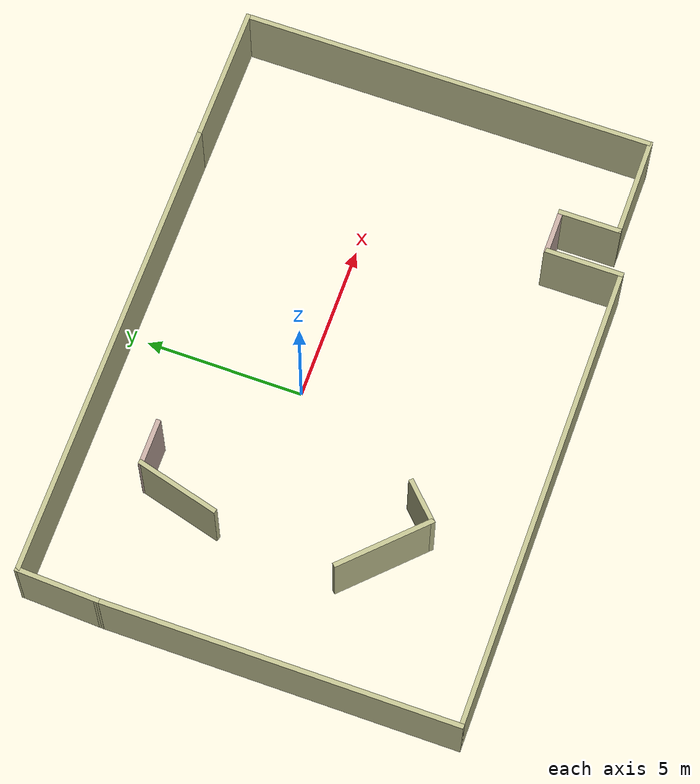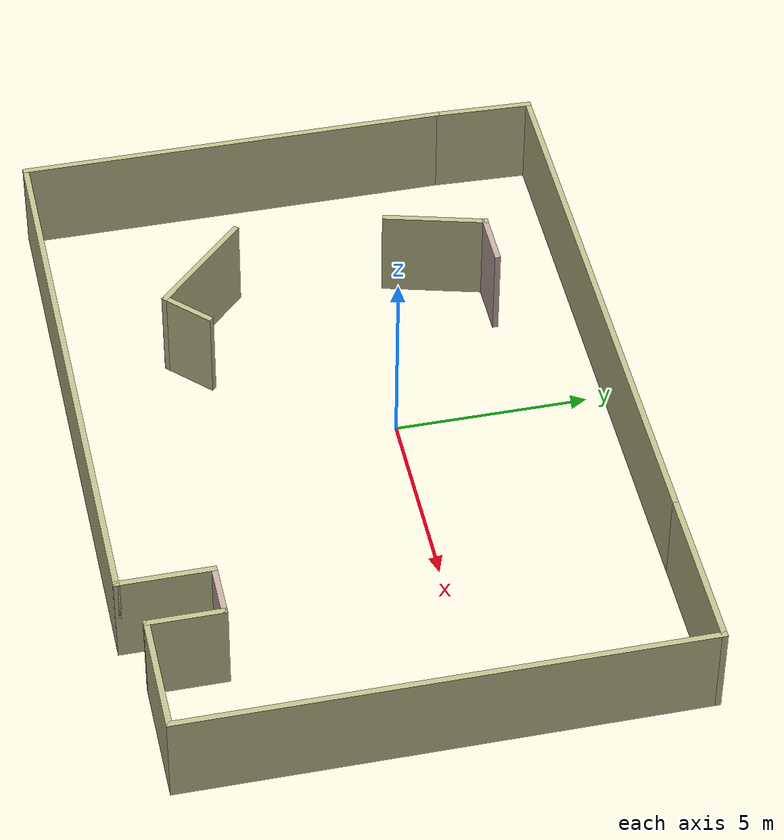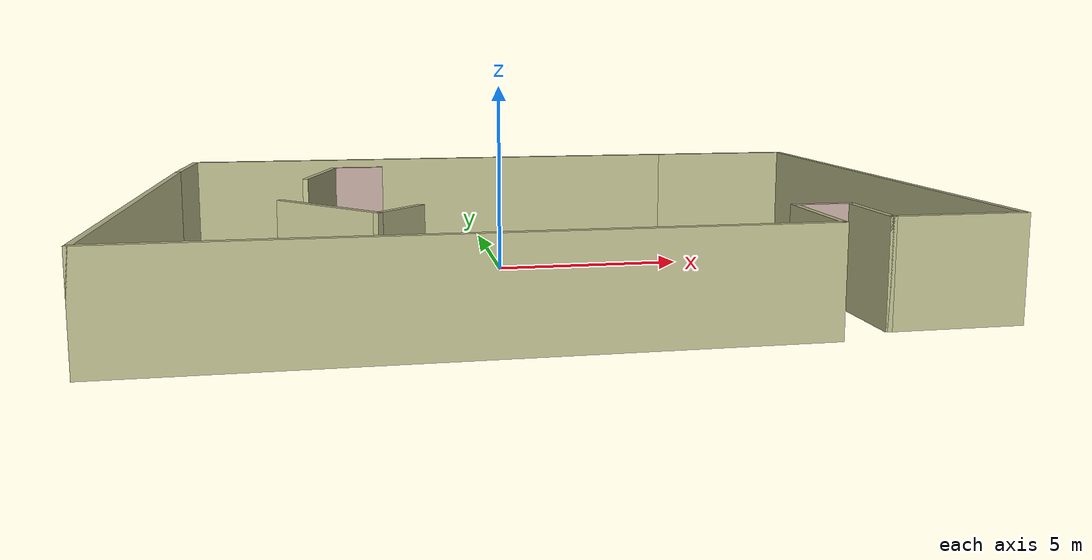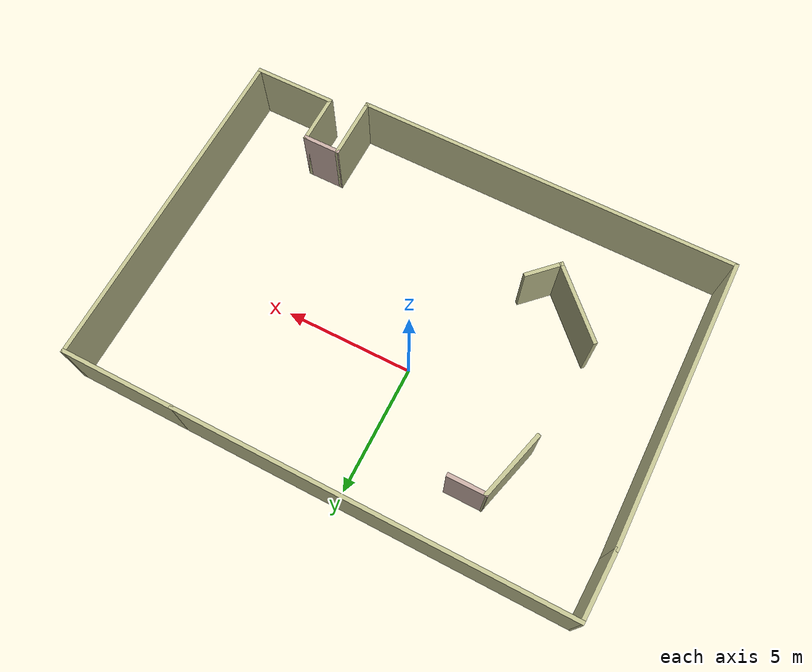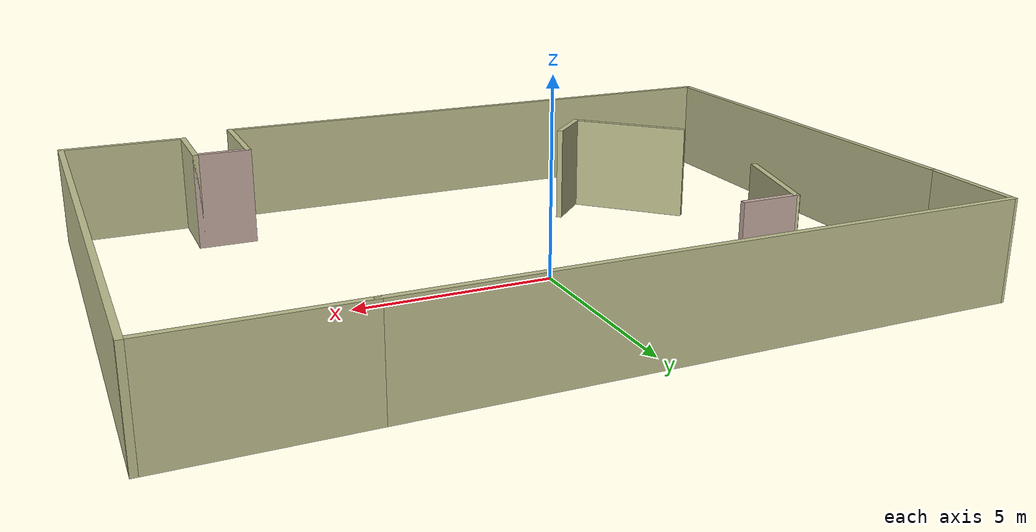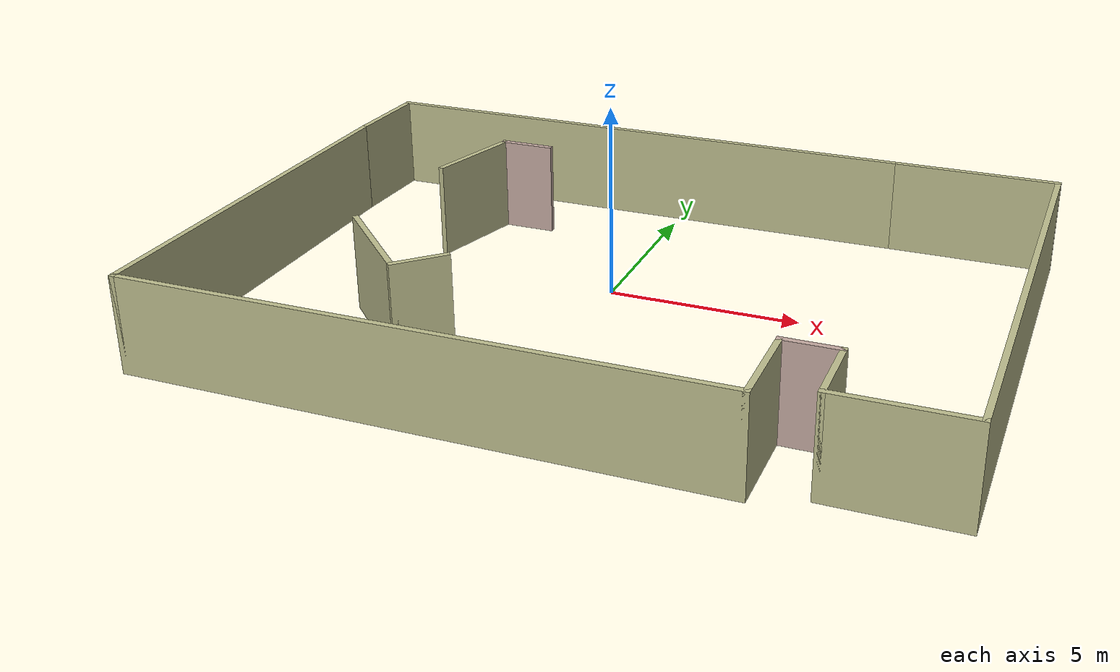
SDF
<?xml version='1.0'?>
<sdf version='1.7'>
  <model name='walls'>
    <pose>0.762888 -1.28525 0 0 -0 0</pose>
    <link name='Wall_10'>
      <collision name='Wall_10_Collision'>
        <geometry>
          <box>
            <size>15 0.15 2.5</size>
          </box>
        </geometry>
        <pose>0 0 1.25 0 -0 0</pose>
      </collision>
      <visual name='Wall_10_Visual'>
        <pose>0 0 1.25 0 -0 0</pose>
        <geometry>
          <box>
            <size>15 0.15 2.5</size>
          </box>
        </geometry>
        <material>
          <script>
            <uri>file://media/materials/scripts/gazebo.material</uri>
            <name>Gazebo/Grey</name>
          </script>
          <ambient>0.741176 0.741176 0.556863 1</ambient>
        </material>
        <meta>
          <layer>0</layer>
        </meta>
      </visual>
      <pose>-2.12353 6.79853 0 0 -0 3.14159</pose>
    </link>
    <link name='Wall_11'>
      <collision name='Wall_11_Collision'>
        <geometry>
          <box>
            <size>2.652 0.15 2.5</size>
          </box>
        </geometry>
        <pose>0 0 1.25 0 -0 0</pose>
      </collision>
      <visual name='Wall_11_Visual'>
        <pose>0 0 1.25 0 -0 0</pose>
        <geometry>
          <box>
            <size>2.652 0.15 2.5</size>
          </box>
        </geometry>
        <material>
          <script>
            <uri>file://media/materials/scripts/gazebo.material</uri>
            <name>Gazebo/Grey</name>
          </script>
          <ambient>0.741176 0.741176 0.556863 1</ambient>
        </material>
        <meta>
          <layer>0</layer>
        </meta>
      </visual>
      <pose>-9.59853 5.54853 0 0 -0 -1.61078</pose>
    </link>
    <link name='Wall_13'>
      <collision name='Wall_13_Collision'>
        <geometry>
          <box>
            <size>3.25 0.15 2.5</size>
          </box>
        </geometry>
        <pose>0 0 1.25 0 -0 0</pose>
      </collision>
      <visual name='Wall_13_Visual'>
        <pose>0 0 1.25 0 -0 0</pose>
        <geometry>
          <box>
            <size>3.25 0.15 2.5</size>
          </box>
        </geometry>
        <material>
          <script>
            <uri>file://media/materials/scripts/gazebo.material</uri>
            <name>Gazebo/Grey</name>
          </script>
          <ambient>0.741176 0.741176 0.556863 1</ambient>
        </material>
        <meta>
          <layer>0</layer>
        </meta>
      </visual>
      <pose>-5.21657 -2.91531 0 0 -0 -0.785398</pose>
    </link>
    <link name='Wall_14'>
      <collision name='Wall_14_Collision'>
        <geometry>
          <box>
            <size>1.5 0.15 2.5</size>
          </box>
        </geometry>
        <pose>0 0 1.25 0 -0 0</pose>
      </collision>
      <visual name='Wall_14_Visual'>
        <pose>0 0 1.25 0 -0 0</pose>
        <geometry>
          <box>
            <size>1.5 0.15 2.5</size>
          </box>
        </geometry>
        <material>
          <script>
            <uri>file://media/materials/scripts/gazebo.material</uri>
            <name>Gazebo/Grey</name>
          </script>
          <ambient>0.741176 0.741176 0.556863 1</ambient>
        </material>
        <meta>
          <layer>0</layer>
        </meta>
      </visual>
      <pose>-3.64326 -3.53403 0 0 -0 0.785398</pose>
    </link>
    <link name='Wall_16'>
      <collision name='Wall_16_Collision'>
        <geometry>
          <box>
            <size>2.75 0.15 2.5</size>
          </box>
        </geometry>
        <pose>0 0 1.25 0 -0 0</pose>
      </collision>
      <visual name='Wall_16_Visual'>
        <pose>0 0 1.25 0 -0 0</pose>
        <geometry>
          <box>
            <size>2.75 0.15 2.5</size>
          </box>
        </geometry>
        <material>
          <script>
            <uri>file://media/materials/scripts/gazebo.material</uri>
            <name>Gazebo/Grey</name>
          </script>
          <ambient>0.741176 0.741176 0.556863 1</ambient>
        </material>
        <meta>
          <layer>0</layer>
        </meta>
      </visual>
      <pose>-5.60904 3.35196 0 0 -0 1.309</pose>
    </link>
    <link name='Wall_17'>
      <collision name='Wall_17_Collision'>
        <geometry>
          <box>
            <size>1.5 0.15 2.5</size>
          </box>
        </geometry>
        <pose>0 0 1.25 0 -0 0</pose>
      </collision>
      <visual name='Wall_17_Visual'>
        <pose>0 0 1.25 0 -0 0</pose>
        <geometry>
          <box>
            <size>1.5 0.15 2.5</size>
          </box>
        </geometry>
        <material>
          <script>
            <uri>file://media/materials/scripts/gazebo.material</uri>
            <name>Gazebo/Grey</name>
          </script>
          <ambient>0.760784 0.662745 0.627451 1</ambient>
        </material>
        <meta>
          <layer>0</layer>
        </meta>
      </visual>
      <pose>-4.59758 4.60766 0 0 -0 0</pose>
    </link>
    <link name='Wall_2'>
      <collision name='Wall_2_Collision'>
        <geometry>
          <box>
            <size>11.25 0.15 2.5</size>
          </box>
        </geometry>
        <pose>0 0 1.25 0 -0 0</pose>
      </collision>
      <visual name='Wall_2_Visual'>
        <pose>0 0 1.25 0 -0 0</pose>
        <geometry>
          <box>
            <size>11.25 0.15 2.5</size>
          </box>
        </geometry>
        <material>
          <script>
            <uri>file://media/materials/scripts/gazebo.material</uri>
            <name>Gazebo/Grey</name>
          </script>
          <ambient>0.741176 0.741176 0.556863 1</ambient>
        </material>
        <meta>
          <layer>0</layer>
        </meta>
      </visual>
      <pose>-9.64853 -1.25147 0 0 -0 -1.5708</pose>
    </link>
    <link name='Wall_3'>
      <collision name='Wall_3_Collision'>
        <geometry>
          <box>
            <size>15 0.15 2.5</size>
          </box>
        </geometry>
        <pose>0 0 1.25 0 -0 0</pose>
      </collision>
      <visual name='Wall_3_Visual'>
        <pose>0 0 1.25 0 -0 0</pose>
        <geometry>
          <box>
            <size>15 0.15 2.5</size>
          </box>
        </geometry>
        <material>
          <script>
            <uri>file://media/materials/scripts/gazebo.material</uri>
            <name>Gazebo/Grey</name>
          </script>
          <ambient>0.741176 0.741176 0.556863 1</ambient>
        </material>
        <meta>
          <layer>0</layer>
        </meta>
      </visual>
      <pose>-2.22353 -6.80147 0 0 -0 0</pose>
    </link>
    <link name='Wall_4'>
      <collision name='Wall_4_Collision'>
        <geometry>
          <box>
            <size>2.5 0.15 2.5</size>
          </box>
        </geometry>
        <pose>0 0 1.25 0 -0 0</pose>
      </collision>
      <visual name='Wall_4_Visual'>
        <pose>0 0 1.25 0 -0 0</pose>
        <geometry>
          <box>
            <size>2.5 0.15 2.5</size>
          </box>
        </geometry>
        <material>
          <script>
            <uri>file://media/materials/scripts/gazebo.material</uri>
            <name>Gazebo/Grey</name>
          </script>
          <ambient>0.741176 0.741176 0.556863 1</ambient>
        </material>
        <meta>
          <layer>0</layer>
        </meta>
      </visual>
      <pose>5.20147 -5.62647 0 0 -0 1.5708</pose>
    </link>
    <link name='Wall_5'>
      <collision name='Wall_5_Collision'>
        <geometry>
          <box>
            <size>1.5 0.15 2.5</size>
          </box>
        </geometry>
        <pose>0 0 1.25 0 -0 0</pose>
      </collision>
      <visual name='Wall_5_Visual'>
        <pose>0 0 1.25 0 -0 0</pose>
        <geometry>
          <box>
            <size>1.5 0.15 2.5</size>
          </box>
        </geometry>
        <material>
          <script>
            <uri>file://media/materials/scripts/gazebo.material</uri>
            <name>Gazebo/Grey</name>
          </script>
          <ambient>0.760784 0.662745 0.627451 1</ambient>
        </material>
        <meta>
          <layer>0</layer>
        </meta>
      </visual>
      <pose>5.87647 -4.45147 0 0 -0 0</pose>
    </link>
    <link name='Wall_6'>
      <collision name='Wall_6_Collision'>
        <geometry>
          <box>
            <size>2 0.15 2.5</size>
          </box>
        </geometry>
        <pose>0 0 1.25 0 -0 0</pose>
      </collision>
      <visual name='Wall_6_Visual'>
        <pose>0 0 1.25 0 -0 0</pose>
        <geometry>
          <box>
            <size>2 0.15 2.5</size>
          </box>
        </geometry>
        <material>
          <script>
            <uri>file://media/materials/scripts/gazebo.material</uri>
            <name>Gazebo/Grey</name>
          </script>
          <ambient>0.741176 0.741176 0.556863 1</ambient>
        </material>
        <meta>
          <layer>0</layer>
        </meta>
      </visual>
      <pose>6.55147 -5.37647 0 0 -0 -1.5708</pose>
    </link>
    <link name='Wall_7'>
      <collision name='Wall_7_Collision'>
        <geometry>
          <box>
            <size>3.25 0.15 2.5</size>
          </box>
        </geometry>
        <pose>0 0 1.25 0 -0 0</pose>
      </collision>
      <visual name='Wall_7_Visual'>
        <pose>0 0 1.25 0 -0 0</pose>
        <geometry>
          <box>
            <size>3.25 0.15 2.5</size>
          </box>
        </geometry>
        <material>
          <script>
            <uri>file://media/materials/scripts/gazebo.material</uri>
            <name>Gazebo/Grey</name>
          </script>
          <ambient>0.741176 0.741176 0.556863 1</ambient>
        </material>
        <meta>
          <layer>0</layer>
        </meta>
      </visual>
      <pose>8.10147 -6.30147 0 0 -0 0</pose>
    </link>
    <link name='Wall_8'>
      <collision name='Wall_8_Collision'>
        <geometry>
          <box>
            <size>13.25 0.15 2.5</size>
          </box>
        </geometry>
        <pose>0 0 1.25 0 -0 0</pose>
      </collision>
      <visual name='Wall_8_Visual'>
        <pose>0 0 1.25 0 -0 0</pose>
        <geometry>
          <box>
            <size>13.25 0.15 2.5</size>
          </box>
        </geometry>
        <material>
          <script>
            <uri>file://media/materials/scripts/gazebo.material</uri>
            <name>Gazebo/Grey</name>
          </script>
          <ambient>0.741176 0.741176 0.556863 1</ambient>
        </material>
        <meta>
          <layer>0</layer>
        </meta>
      </visual>
      <pose>9.65147 0.248531 0 0 -0 1.5708</pose>
    </link>
    <link name='Wall_9'>
      <collision name='Wall_9_Collision'>
        <geometry>
          <box>
            <size>4.5 0.15 2.5</size>
          </box>
        </geometry>
        <pose>0 0 1.25 0 -0 0</pose>
      </collision>
      <visual name='Wall_9_Visual'>
        <pose>0 0 1.25 0 -0 0</pose>
        <geometry>
          <box>
            <size>4.5 0.15 2.5</size>
          </box>
        </geometry>
        <material>
          <script>
            <uri>file://media/materials/scripts/gazebo.material</uri>
            <name>Gazebo/Grey</name>
          </script>
          <ambient>0.741176 0.741176 0.556863 1</ambient>
        </material>
        <meta>
          <layer>0</layer>
        </meta>
      </visual>
      <pose>7.47647 6.79853 0 0 -0 3.14159</pose>
    </link>
    <static>1</static>
  </model>
</sdf>
